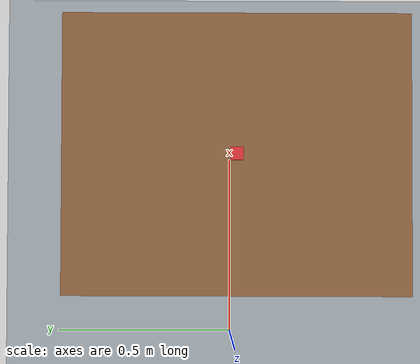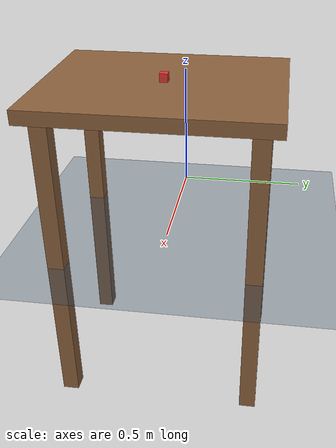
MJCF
<mujoco model="shared_table_block_scene">
  <statistic center="0.2 0 0.95" extent="1.4"/>
  <size nconmax="512" njmax="1024"/>

  <visual>
    <headlight diffuse="0.6 0.6 0.6" ambient="0.3 0.3 0.3" specular="0 0 0"/>
    <rgba haze="0.15 0.25 0.35 1"/>
    <global azimuth="140" elevation="-25"/>
  </visual>

  <asset>
    <texture type="skybox" builtin="gradient" rgb1="0.3 0.5 0.7" rgb2="0 0 0" width="512" height="3072"/>
    <texture
      type="2d"
      name="groundplane"
      builtin="checker"
      mark="edge"
      rgb1="0.2 0.3 0.4"
      rgb2="0.1 0.2 0.3"
      markrgb="0.8 0.8 0.8"
      width="300"
      height="300"
    />
    <material name="groundplane" texture="groundplane" texuniform="true" texrepeat="5 5" reflectance="0.2"/>
    <material name="table_mat" rgba="0.55 0.38 0.24 1"/>
    <material name="block_mat" rgba="0.85 0.2 0.2 1"/>
  </asset>

  <worldbody>
    <light pos="0 0 2" dir="0 0 -1" directional="true"/>
    <geom name="floor" size="0 0 0.05" type="plane" material="groundplane"/>

    <body name="table_scene" pos="0.48 0 0.575">
      <geom name="table_top" type="box" size="0.34 0.42 0.025" material="table_mat" friction="1.2 0.02 0.002"/>
      <geom name="table_leg_fl" type="box" pos="0.27 0.35 -0.575" size="0.03 0.03 0.575" material="table_mat"/>
      <geom name="table_leg_fr" type="box" pos="0.27 -0.35 -0.575" size="0.03 0.03 0.575" material="table_mat"/>
      <geom name="table_leg_rl" type="box" pos="-0.27 0.35 -0.575" size="0.03 0.03 0.575" material="table_mat"/>
      <geom name="table_leg_rr" type="box" pos="-0.27 -0.35 -0.575" size="0.03 0.03 0.575" material="table_mat"/>
    </body>

    <!-- Cube half-size 0.015 → 30mm edge; center z = table_top(0.60) + half_z so it rests on table -->
    <body name="block" pos="0.48 0 0.615">
      <freejoint/>
      <geom
        name="block_geom"
        type="box"
        size="0.015 0.015 0.015"
        material="block_mat"
        density="300"
        condim="6"
        friction="3 0.15 0.02"
        solimp="0.95 0.99 0.001 0.5 2"
        solref="0.002 1"
      />
    </body>

    <camera mode="fixed" name="frontview" pos="2.304 -0.014 1.620" xyaxes="0.006 1.000 -0.000 -0.575 0.004 0.818"/>
    <camera mode="fixed" name="birdview" pos="-0.2 0 3.0" quat="0.7071 0 0 0.7071"/>
    <camera mode="fixed" name="overview" pos="0.289 0.001 1.993" xyaxes="0.003 -1.000 -0.000 1.000 0.003 0.017"/>
    <camera mode="fixed" name="agentview" pos="0.5 0 1.35" quat="0.653 0.271 0.271 0.653"/>
    <camera mode="fixed" name="sideview" pos="1.614 1.178 1.000" xyaxes="-0.704 0.710 -0.000 -0.212 -0.210 0.955"/>
  </worldbody>
</mujoco>
